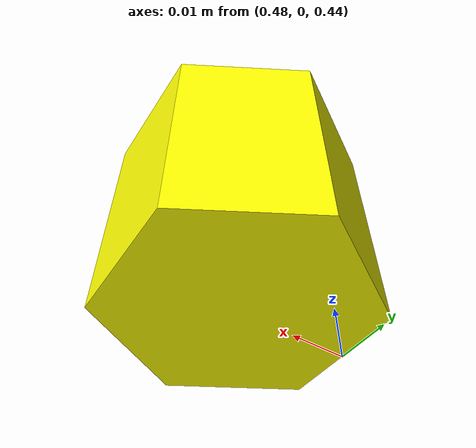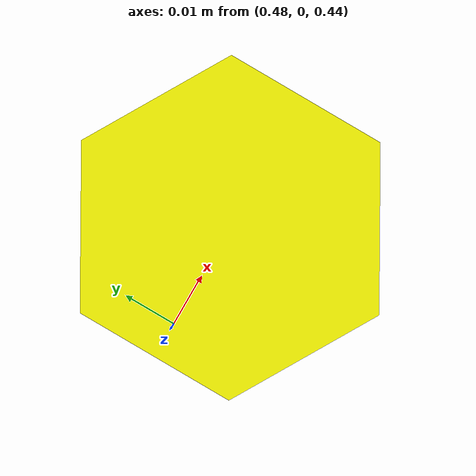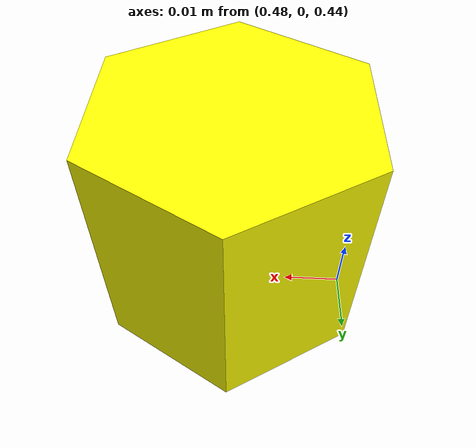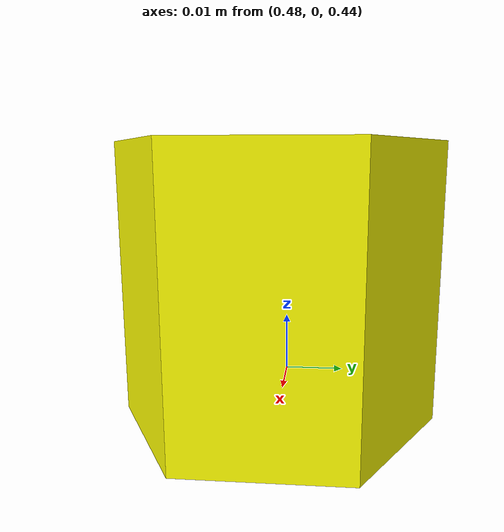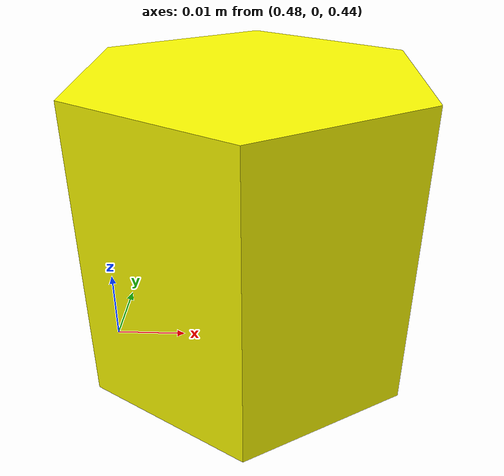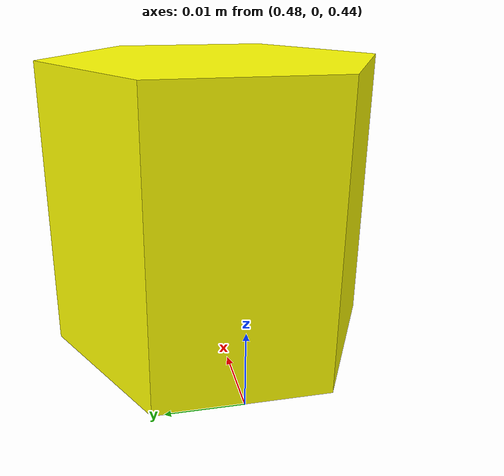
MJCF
<mujoco>
    <asset>
        <!-- 导入 STL 文件 -->
        <mesh name="hexagon_mesh" file="objects/cube/hexagon.stl" scale="0.01 0.01 0.01"/>
    </asset>
    <worldbody>
        <body name="yellow_block" pos="0.5 0.0 0.46">
            <joint name="yellow_block:joint" type="free" damping="0.1" />
            <geom name="yellow_hexagon" type="mesh" mesh="hexagon_mesh" rgba="1 1 0 1" conaffinity="0" contype="0" group="1" density="0" euler="0 0 0"/>
  <geom name="yellow_block_collision" size="0.02 0.02 0.02" type="box" conaffinity="1" condim="4" contype="1" group="4" mass="0.01" />
        </body>
    </worldbody>
</mujoco>
